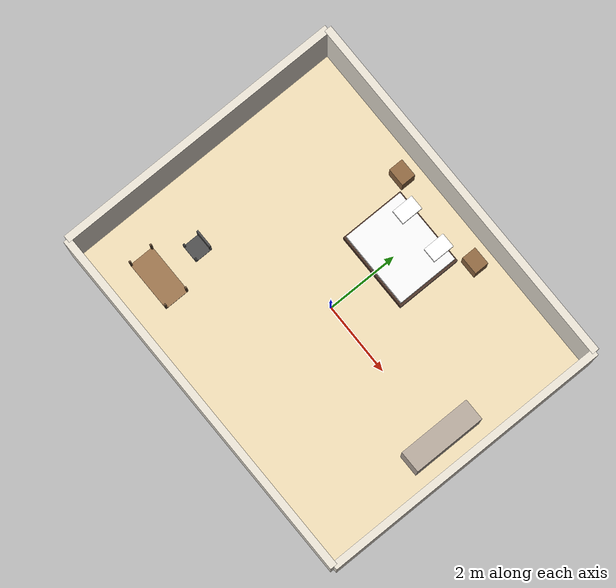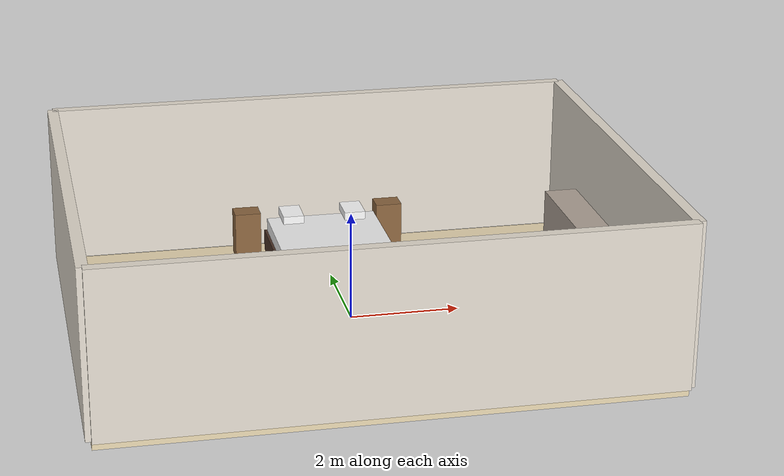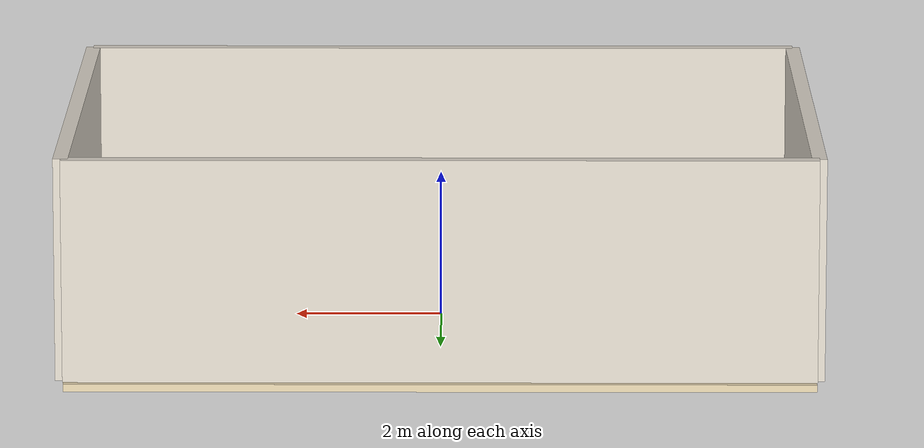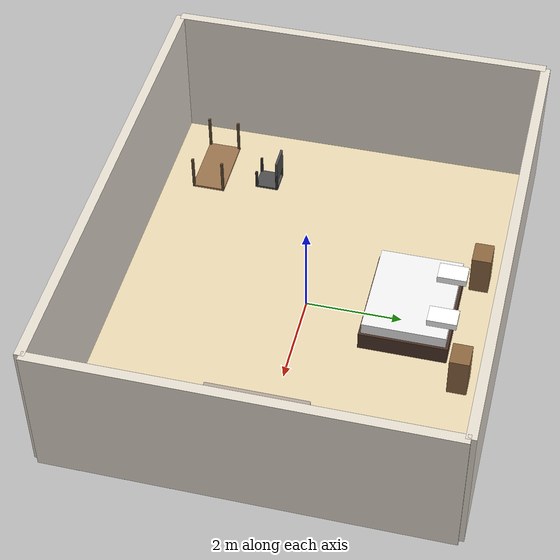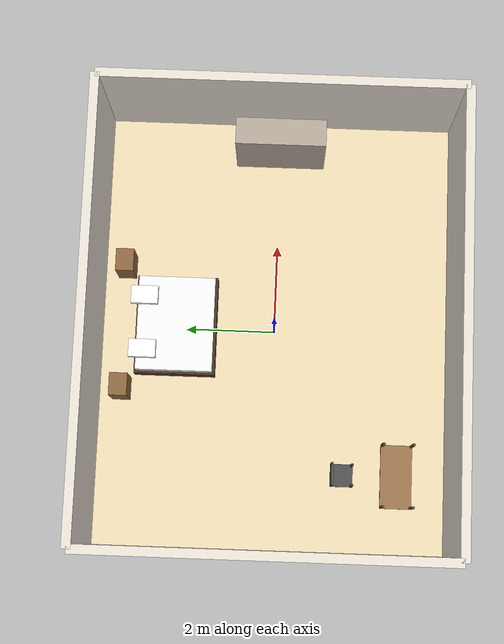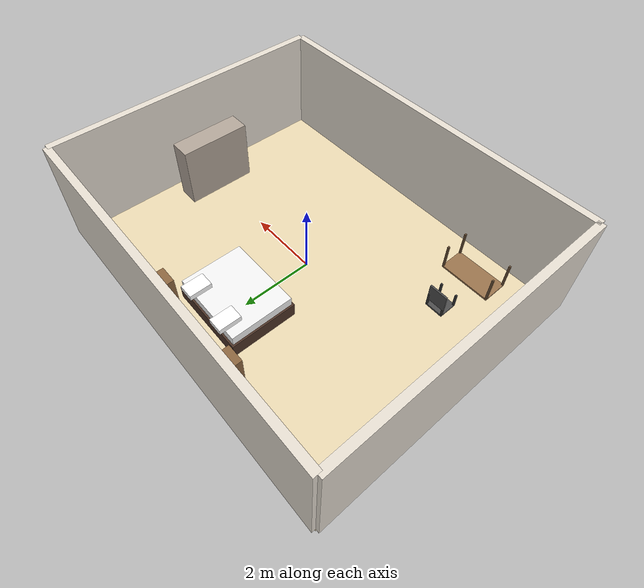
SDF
<?xml version="1.0" ?>
<sdf version="1.9">
  <world name="room_world">
    <!-- 全局光照：关闭高光、关闭阴影，消除反光 -->
    <light name="sun" type="directional">
      <cast_shadows>false</cast_shadows>
      <pose>0 0 50 0 0 0</pose>
      <diffuse>0.95 0.95 0.95 1</diffuse>
      <specular>0 0 0 1</specular>
      <direction>0.2 0.2 -0.8</direction>
    </light>
    <!-- 卧室房间：地面 + 四周墙 -->
    <model name="bedroom">
      <static>true</static>
      <!-- 卧室地面：中心下移到z=-0.1，顶面=-0.05，轮子z=0不穿地 -->
      <link name="floor">
        <pose>0 0 -0.1 0 0 0</pose>
        <collision name="floor_collision">
          <geometry>
            <box>
              <size>10 8 0.1</size>
            </box>
          </geometry>
        </collision>
        <visual name="floor_visual">
          <geometry>
            <box>
              <size>10 8 0.1</size>
            </box>
          </geometry>
          <material>
            <diffuse>0.92 0.85 0.7 1</diffuse>
            <specular>0 0 0 1</specular>
          </material>
        </visual>
      </link>
      <!-- 北墙 -->
      <link name="wall_north">
        <pose>0 4 1.5 0 0 0</pose>
        <collision name="wall_north_collision">
          <geometry>
            <box>
              <size>10 0.2 3</size>
            </box>
          </geometry>
        </collision>
        <visual name="wall_north_visual">
          <geometry>
            <box>
              <size>10 0.2 3</size>
            </box>
          </geometry>
          <material>
            <diffuse>0.9 0.87 0.82 1</diffuse>
            <specular>0 0 0 1</specular>
          </material>
        </visual>
      </link>
      <!-- 南墙 -->
      <link name="wall_south">
        <pose>0 -4 1.5 0 0 0</pose>
        <collision name="wall_south_collision">
          <geometry>
            <box>
              <size>10 0.2 3</size>
            </box>
          </geometry>
        </collision>
        <visual name="wall_south_visual">
          <geometry>
            <box>
              <size>10 0.2 3</size>
            </box>
          </geometry>
          <material>
            <diffuse>0.9 0.87 0.82 1</diffuse>
            <specular>0 0 0 1</specular>
          </material>
        </visual>
      </link>
      <!-- 东墙 -->
      <link name="wall_east">
        <pose>5 0 1.5 0 0 1.5707</pose>
        <collision name="wall_east_collision">
          <geometry>
            <box>
              <size>8 0.2 3</size>
            </box>
          </geometry>
        </collision>
        <visual name="wall_east_visual">
          <geometry>
            <box>
              <size>8 0.2 3</size>
            </box>
          </geometry>
          <material>
            <diffuse>0.9 0.87 0.82 1</diffuse>
            <specular>0 0 0 1</specular>
          </material>
        </visual>
      </link>
      <!-- 西墙 -->
      <link name="wall_west">
        <pose>-5 0 1.5 0 0 1.5707</pose>
        <collision name="wall_west_collision">
          <geometry>
            <box>
              <size>8 0.2 3</size>
            </box>
          </geometry>
        </collision>
        <visual name="wall_west_visual">
          <geometry>
            <box>
              <size>8 0.2 3</size>
            </box>
          </geometry>
          <material>
            <diffuse>0.9 0.87 0.82 1</diffuse>
            <specular>0 0 0 1</specular>
          </material>
        </visual>
      </link>
    </model>
    <model name="bed">
      <static>true</static>
      <link name="link">
        <pose>0 2.2 0.4 0 0 0</pose>
        <collision name="bed_base_collision">
          <geometry>
            <box>
              <size>2.2 1.8 0.4</size>
            </box>
          </geometry>
        </collision>
        <visual name="bed_base_visual">
          <geometry>
            <box>
              <size>2.2 1.8 0.4</size>
            </box>
          </geometry>
          <material>
            <diffuse>0.3 0.2 0.15 1</diffuse>
            <specular>0 0 0 1</specular>
          </material>
        </visual>
        <collision name="bed_mattress_collision">
          <geometry>
            <box>
              <size>2.1 1.7 0.25</size>
            </box>
          </geometry>
        </collision>
        <visual name="bed_mattress_visual">
          <pose>0 0 0.325 0 0 0</pose>
          <geometry>
            <box>
              <size>2.1 1.7 0.25</size>
            </box>
          </geometry>
          <material>
            <diffuse>0.95 0.95 0.95 1</diffuse>
            <specular>0 0 0 1</specular>
          </material>
        </visual>
        <collision name="bed_pillow_left_collision">
          <geometry>
            <box>
              <size>0.4 0.6 0.15</size>
            </box>
          </geometry>
        </collision>
        <visual name="bed_pillow_left_visual">
          <pose>-0.6 0.7 0.55 0 0 0</pose>
          <geometry>
            <box>
              <size>0.4 0.6 0.15</size>
            </box>
          </geometry>
          <material>
            <diffuse>1 1 1 1</diffuse>
            <specular>0 0 0 1</specular>
          </material>
        </visual>
        <collision name="bed_pillow_right_collision">
          <geometry>
            <box>
              <size>0.4 0.6 0.15</size>
            </box>
          </geometry>
        </collision>
        <visual name="bed_pillow_right_visual">
          <pose>0.6 0.7 0.55 0 0 0</pose>
          <geometry>
            <box>
              <size>0.4 0.6 0.15</size>
            </box>
          </geometry>
          <material>
            <diffuse>1 1 1 1</diffuse>
            <specular>0 0 0 1</specular>
          </material>
        </visual>
      </link>
    </model>
    <!-- 左侧床头柜 -->
    <model name="nightstand_left">
      <static>true</static>
      <link name="link">
        <pose>-1.4 3.4 0.45 0 0 0</pose>
        <collision name="collision">
          <geometry>
            <box>
              <size>0.5 0.4 0.9</size>
            </box>
          </geometry>
        </collision>
        <visual name="visual">
          <geometry>
            <box>
              <size>0.5 0.4 0.9</size>
            </box>
          </geometry>
          <material>
            <diffuse>0.55 0.4 0.25 1</diffuse>
            <specular>0 0 0 1</specular>
          </material>
        </visual>
      </link>
    </model>
    <!-- 右侧床头柜 -->
    <model name="nightstand_right">
      <static>true</static>
      <link name="link">
        <pose>1.4 3.4 0.45 0 0 0</pose>
        <collision name="collision">
          <geometry>
            <box>
              <size>0.5 0.4 0.9</size>
            </box>
          </geometry>
        </collision>
        <visual name="visual">
          <geometry>
            <box>
              <size>0.5 0.4 0.9</size>
            </box>
          </geometry>
          <material>
            <diffuse>0.55 0.4 0.25 1</diffuse>
            <specular>0 0 0 1</specular>
          </material>
        </visual>
      </link>
    </model>
    <!-- 书桌 -->
    <model name="desk">
      <static>true</static>
      <link name="link">
        <pose>-3.2 -2.8 0.375 0 0 0</pose>
        <collision name="table_top_collision">
          <geometry>
            <box>
              <size>1.4 0.7 0.05</size>
            </box>
          </geometry>
        </collision>
        <visual name="table_top_visual">
          <geometry>
            <box>
              <size>1.4 0.7 0.05</size>
            </box>
          </geometry>
          <material>
            <diffuse>0.6 0.45 0.3 1</diffuse>
            <specular>0 0 0 1</specular>
          </material>
        </visual>
        <collision name="leg_left_front_collision">
          <geometry>
            <box>
              <size>0.05 0.05 0.75</size>
            </box>
          </geometry>
        </collision>
        <visual name="leg_left_front_visual">
          <pose>-0.675 0.325 0.375 0 0 0</pose>
          <geometry>
            <box>
              <size>0.05 0.05 0.75</size>
            </box>
          </geometry>
          <material>
            <diffuse>0.4 0.3 0.2 1</diffuse>
            <specular>0 0 0 1</specular>
          </material>
        </visual>
        <collision name="leg_right_front_collision">
          <geometry>
            <box>
              <size>0.05 0.05 0.75</size>
            </box>
          </geometry>
        </collision>
        <visual name="leg_right_front_visual">
          <pose>0.675 0.325 0.375 0 0 0</pose>
          <geometry>
            <box>
              <size>0.05 0.05 0.75</size>
            </box>
          </geometry>
          <material>
            <diffuse>0.4 0.3 0.2 1</diffuse>
            <specular>0 0 0 1</specular>
          </material>
        </visual>
        <collision name="leg_left_back_collision">
          <geometry>
            <box>
              <size>0.05 0.05 0.75</size>
            </box>
          </geometry>
        </collision>
        <visual name="leg_left_back_visual">
          <pose>-0.675 -0.325 0.375 0 0 0</pose>
          <geometry>
            <box>
              <size>0.05 0.05 0.75</size>
            </box>
          </geometry>
          <material>
            <diffuse>0.4 0.3 0.2 1</diffuse>
            <specular>0 0 0 1</specular>
          </material>
        </visual>
        <collision name="leg_right_back_collision">
          <geometry>
            <box>
              <size>0.05 0.05 0.75</size>
            </box>
          </geometry>
        </collision>
        <visual name="leg_right_back_visual">
          <pose>0.675 -0.325 0.375 0 0 0</pose>
          <geometry>
            <box>
              <size>0.05 0.05 0.75</size>
            </box>
          </geometry>
          <material>
            <diffuse>0.4 0.3 0.2 1</diffuse>
            <specular>0 0 0 1</specular>
          </material>
        </visual>
      </link>
    </model>
    <!-- 椅子 -->
    <model name="chair">
      <static>true</static>
      <link name="link">
        <pose>-3.2 -1.6 0.225 0 0 0</pose>
        <collision name="seat_collision">
          <geometry>
            <box>
              <size>0.5 0.5 0.05</size>
            </box>
          </geometry>
        </collision>
        <visual name="seat_visual">
          <geometry>
            <box>
              <size>0.5 0.5 0.05</size>
            </box>
          </geometry>
          <material>
            <diffuse>0.3 0.3 0.3 1</diffuse>
            <specular>0 0 0 1</specular>
          </material>
        </visual>
        <collision name="back_collision">
          <geometry>
            <box>
              <size>0.5 0.05 0.5</size>
            </box>
          </geometry>
        </collision>
        <visual name="back_visual">
          <pose>0 0.225 0.475 0 0 0</pose>
          <geometry>
            <box>
              <size>0.5 0.05 0.5</size>
            </box>
          </geometry>
          <material>
            <diffuse>0.3 0.3 0.3 1</diffuse>
            <specular>0 0 0 1</specular>
          </material>
        </visual>
        <collision name="leg_left_front_collision">
          <geometry>
            <box>
              <size>0.05 0.05 0.4</size>
            </box>
          </geometry>
        </collision>
        <visual name="leg_left_front_visual">
          <pose>-0.225 0.225 0.2 0 0 0</pose>
          <geometry>
            <box>
              <size>0.05 0.05 0.4</size>
            </box>
          </geometry>
          <material>
            <diffuse>0.2 0.2 0.2 1</diffuse>
            <specular>0 0 0 1</specular>
          </material>
        </visual>
        <collision name="leg_right_front_collision">
          <geometry>
            <box>
              <size>0.05 0.05 0.4</size>
            </box>
          </geometry>
        </collision>
        <visual name="leg_right_front_visual">
          <pose>0.225 0.225 0.2 0 0 0</pose>
          <geometry>
            <box>
              <size>0.05 0.05 0.4</size>
            </box>
          </geometry>
          <material>
            <diffuse>0.2 0.2 0.2 1</diffuse>
            <specular>0 0 0 1</specular>
          </material>
        </visual>
        <collision name="leg_left_back_collision">
          <geometry>
            <box>
              <size>0.05 0.05 0.4</size>
            </box>
          </geometry>
        </collision>
        <visual name="leg_left_back_visual">
          <pose>-0.225 -0.225 0.2 0 0 0</pose>
          <geometry>
            <box>
              <size>0.05 0.05 0.4</size>
            </box>
          </geometry>
          <material>
            <diffuse>0.2 0.2 0.2 1</diffuse>
            <specular>0 0 0 1</specular>
          </material>
        </visual>
        <collision name="leg_right_back_collision">
          <geometry>
            <box>
              <size>0.05 0.05 0.4</size>
            </box>
          </geometry>
        </collision>
        <visual name="leg_right_back_visual">
          <pose>0.225 -0.225 0.2 0 0 0</pose>
          <geometry>
            <box>
              <size>0.05 0.05 0.4</size>
            </box>
          </geometry>
          <material>
            <diffuse>0.2 0.2 0.2 1</diffuse>
            <specular>0 0 0 1</specular>
          </material>
        </visual>
      </link>
    </model>
    <!-- 衣柜 -->
    <model name="wardrobe">
      <static>true</static>
      <link name="link">
        <pose>4.2 0 0.9 0 0 0</pose>
        <collision name="collision">
          <geometry>
            <box>
              <size>0.6 2.0 1.8</size>
            </box>
          </geometry>
        </collision>
        <visual name="visual">
          <geometry>
            <box>
              <size>0.6 2.0 1.8</size>
            </box>
          </geometry>
          <material>
            <diffuse>0.7 0.65 0.6 1</diffuse>
            <specular>0 0 0 1</specular>
          </material>
        </visual>
      </link>
    </model>
  </world>
</sdf>
